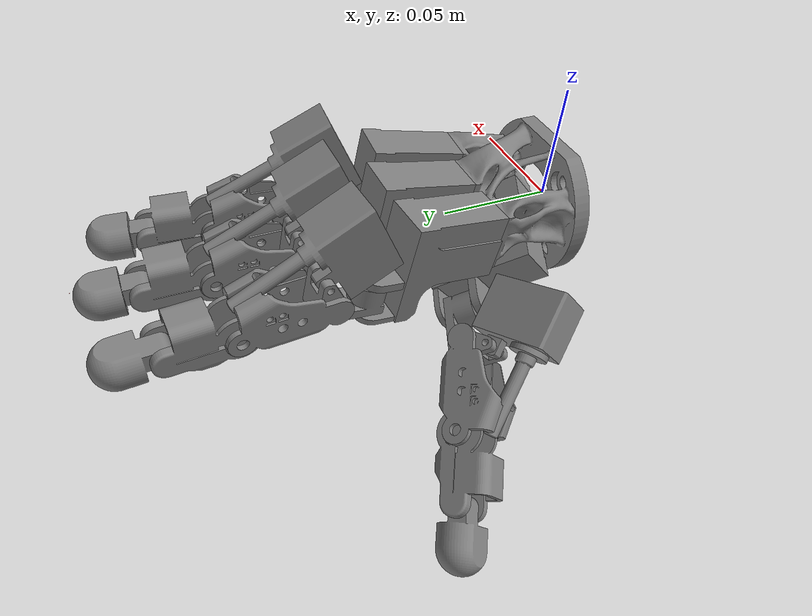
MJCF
<mujoco model="hand_urdf">
  <compiler angle="radian"/>

  <asset>
    <mesh name="base_link" content_type="model/stl" file="base_link.stl" scale="0.001 0.001 0.001"/>
    <mesh name="mcp2_1" content_type="model/stl" file="mcp2_1.stl" scale="0.001 0.001 0.001"/>
    <mesh name="pp2_1" content_type="model/stl" file="pp2_1.stl" scale="0.001 0.001 0.001"/>
    <mesh name="mp2_1" content_type="model/stl" file="mp2_1.stl" scale="0.001 0.001 0.001"/>
    <mesh name="dp2_1" content_type="model/stl" file="dp2_1.stl" scale="0.001 0.001 0.001"/>
    <mesh name="meta2_1" content_type="model/stl" file="meta2_1.stl" scale="0.001 0.001 0.001"/>
    <mesh name="meta1_1" content_type="model/stl" file="meta1_1.stl" scale="0.001 0.001 0.001"/>
    <mesh name="mcp1_1" content_type="model/stl" file="mcp1_1.stl" scale="0.001 0.001 0.001"/>
    <mesh name="pp1_1" content_type="model/stl" file="pp1_1.stl" scale="0.001 0.001 0.001"/>
    <mesh name="mp1_1" content_type="model/stl" file="mp1_1.stl" scale="0.001 0.001 0.001"/>
    <mesh name="dp1_1" content_type="model/stl" file="dp1_1.stl" scale="0.001 0.001 0.001"/>
    <mesh name="meta3_1" content_type="model/stl" file="meta3_1.stl" scale="0.001 0.001 0.001"/>
    <mesh name="mcp3_1" content_type="model/stl" file="mcp3_1.stl" scale="0.001 0.001 0.001"/>
    <mesh name="pp3_1" content_type="model/stl" file="pp3_1.stl" scale="0.001 0.001 0.001"/>
    <mesh name="mp3_1" content_type="model/stl" file="mp3_1.stl" scale="0.001 0.001 0.001"/>
    <mesh name="dp3_1" content_type="model/stl" file="dp3_1.stl" scale="0.001 0.001 0.001"/>
    <mesh name="meta4_1" content_type="model/stl" file="meta4_1.stl" scale="0.001 0.001 0.001"/>
    <mesh name="mcp4_1" content_type="model/stl" file="mcp4_1.stl" scale="0.001 0.001 0.001"/>
    <mesh name="pp4_1" content_type="model/stl" file="pp4_1.stl" scale="0.001 0.001 0.001"/>
    <mesh name="mp4_1" content_type="model/stl" file="mp4_1.stl" scale="0.001 0.001 0.001"/>
    <mesh name="dp4_1" content_type="model/stl" file="dp4_1.stl" scale="0.001 0.001 0.001"/>
    <mesh name="act1_1" content_type="model/stl" file="act1_1.stl" scale="0.001 0.001 0.001"/>
    <mesh name="act2_1" content_type="model/stl" file="act2_1.stl" scale="0.001 0.001 0.001"/>
    <mesh name="act3_1" content_type="model/stl" file="act3_1.stl" scale="0.001 0.001 0.001"/>
    <mesh name="act4_1" content_type="model/stl" file="act4_1.stl" scale="0.001 0.001 0.001"/>
  </asset>

  <worldbody>
    <geom type="mesh" mesh="base_link"/>
    <geom type="mesh" mesh="meta2_1"/>
    <geom type="mesh" mesh="meta1_1"/>
    <geom type="mesh" mesh="meta3_1"/>
    <geom type="mesh" mesh="meta4_1"/>
    <body name="mcp2_1" pos="-0.029022 0.100047 -0.013279">
      <inertial pos="-0.00085722 0.00842528 0.00865166" quat="0.707107 0.707107 0 0" mass="0.0150899" diaginertia="2e-06 2e-06 1e-06"/>
      <joint name="aa2" pos="0 0 0" axis="0 -0.173648 0.984808"/>
      <geom pos="0.029022 -0.100047 0.013279" quat="1 0 0 0" type="mesh" mesh="mcp2_1"/>
      <body name="pp2_1" pos="-0.008953 0.01468 0.010509">
        <inertial pos="0.00558963 0.0222004 0.00172825" quat="0.707107 0.707107 0 0" mass="0.0125687" diaginertia="3e-06 3e-06 2e-06"/>
        <joint name="mcp2" pos="0 0 0" axis="-0.996195 -0.085832 -0.015134"/>
        <geom pos="0.037975 -0.114727 0.00277" quat="1 0 0 0" type="mesh" mesh="pp2_1"/>
        <body name="mp2_1" pos="-0.003931 0.039809 -3.3e-05">
          <inertial pos="0.00676453 0.0144678 0.00126187" quat="0.707107 0.707107 0 0" mass="0.0129842" diaginertia="2e-06 2e-06 1e-06"/>
          <joint name="pip2" pos="0 0 0" axis="-0.996195 -0.085832 -0.015134"/>
          <geom pos="0.041906 -0.154536 0.002803" quat="1 0 0 0" type="mesh" mesh="mp2_1"/>
          <body name="dp2_1" pos="8.7e-05 0.028112 1.9e-05">
            <inertial pos="0.00429285 0.0142959 -0.000246767" mass="0.0151738" diaginertia="1e-06 1e-06 1e-06"/>
            <joint name="dip2" pos="0 0 0" axis="-0.996195 -0.085832 -0.015134"/>
            <geom pos="0.041819 -0.182648 0.002784" quat="1 0 0 0" type="mesh" mesh="dp2_1"/>
            <site name="tip2_site" size="0.0001" rgba="1 0 0 1" pos="0 0.028 0"/>
          </body>
        </body>
      </body>
      <body name="act2_1" pos="0.001613 0.018389 0.02081">
        <inertial pos="-0.00292034 -0.00937475 0.0141296" quat="0.707107 0.707107 0 0" mass="0.050027" diaginertia="1e-05 8e-06 6e-06"/>
        <joint name="act2" pos="0 0 0" axis="-0.996195 -0.085832 -0.015134"/>
        <geom pos="0.027409 -0.118436 -0.007531" quat="1 0 0 0" type="mesh" mesh="act2_1"/>
      </body>
    </body>
    <body name="mcp1_1" pos="-0.029913 0.05726 -0.033338">
      <inertial pos="-0.0118924 -0.00197871 0.00110107" quat="0.5 0.5 0.5 0.5" mass="0.0150899" diaginertia="2e-06 2e-06 1e-06"/>
      <joint name="aa1" pos="0 0 0" axis="-0.42367 -0.700574 0.574195"/>
      <geom pos="0.029913 -0.05726 0.033338" quat="1 0 0 0" type="mesh" mesh="mcp1_1"/>
      <body name="pp1_1" pos="-0.018968 0.004511 0.005092">
        <inertial pos="-0.0183518 0.00316656 -0.0134266" quat="0.5 0.5 0.5 0.5" mass="0.0125687" diaginertia="3e-06 3e-06 2e-06"/>
        <joint name="mcp1" pos="0 0 0" axis="0.037066 -0.646775 -0.76178"/>
        <geom pos="0.048881 -0.061771 0.028246" quat="1 0 0 0" type="mesh" mesh="pp1_1"/>
        <body name="mp1_1" pos="-0.032135 0.006716 -0.027613">
          <inertial pos="-0.012269 0.0102303 0.00121932" quat="0.5 0.5 0.5 0.5" mass="0.0129842" diaginertia="2e-06 2e-06 1e-06"/>
          <joint name="pip1" pos="0 0 0" axis="0.037066 -0.646775 -0.76178"/>
          <geom pos="0.081016 -0.068487 0.055859" quat="1 0 0 0" type="mesh" mesh="mp1_1"/>
          <body name="dp1_1" pos="-0.023397 0.020451 -0.00078">
            <inertial pos="-0.0109583 0.00245434 -0.00983685" mass="0.0151738" diaginertia="1e-06 1e-06 1e-06"/>
            <joint name="dip1" pos="0 0 0" axis="0.037066 -0.646775 -0.76178"/>
            <geom pos="0.104413 -0.088938 0.056639" quat="1 0 0 0" type="mesh" mesh="dp1_1"/>
            <site name="tip1_site" size="0.0001" rgba="1 0 0 1" pos="0 0.028 0"/>
          </body>
        </body>
      </body>
      <body name="act1_1" pos="-0.026658 -0.007903 0.000818">
        <inertial pos="-0.000833478 -0.010584 0.0135401" quat="0.433758 0.539223 -0.0208348 0.721567" mass="0.050027" diaginertia="1.05688e-05 7.63555e-06 4.7956e-06"/>
        <joint name="act1" pos="0 0 0" axis="0.037066 -0.646775 -0.76178"/>
        <geom pos="0.056571 -0.049357 0.03252" quat="1 0 0 0" type="mesh" mesh="act1_1"/>
      </body>
    </body>
    <body name="mcp3_1" pos="0.00045 0.101099 -0.013093">
      <inertial pos="3.79376e-07 0.00846239 0.0086577" quat="0.707107 0.707107 0 0" mass="0.0150899" diaginertia="2e-06 2e-06 1e-06"/>
      <joint name="aa3" pos="0 0 0" axis="0 -0.173648 0.984808"/>
      <geom pos="-0.00045 -0.101099 0.013093" quat="1 0 0 0" type="mesh" mesh="mcp3_1"/>
      <body name="pp3_1" pos="0.0075 0.015388 0.010633">
        <inertial pos="-0.00749962 0.0216372 0.00162929" quat="0.707107 0.707107 0 0" mass="0.0125687" diaginertia="3e-06 3e-06 2e-06"/>
        <joint name="mcp3" pos="0 0 0" axis="-1 0 0"/>
        <geom pos="-0.00795 -0.116487 0.00246" quat="1 0 0 0" type="mesh" mesh="pp3_1"/>
        <body name="mp3_1" pos="-0.0155 0.04 0">
          <inertial pos="0.00800038 0.0138322 0.00115081" quat="0.707107 0.707107 0 0" mass="0.0129842" diaginertia="2e-06 2e-06 1e-06"/>
          <joint name="pip3" pos="0 0 0" axis="-1 0 0"/>
          <geom pos="0.00755 -0.156487 0.00246" quat="1 0 0 0" type="mesh" mesh="mp3_1"/>
          <body name="dp3_1" pos="0.0135 0.028 0">
            <inertial pos="-0.00549962 0.0138749 -0.000320751" mass="0.0151738" diaginertia="1e-06 1e-06 1e-06"/>
            <joint name="dip3" pos="0 0 0" axis="-1 0 0"/>
            <geom pos="-0.00595 -0.184487 0.00246" quat="1 0 0 0" type="mesh" mesh="dp3_1"/>
            <site name="tip3_site" size="0.0001" rgba="1 0 0 1" pos="0 0.028 0"/>
          </body>
        </body>
      </body>
      <body name="act3_1" pos="0.0035 0.01817 0.020771">
        <inertial pos="-0.00349962 -0.00909928 0.0141781" quat="0.707107 0.707107 0 0" mass="0.050027" diaginertia="1e-05 8e-06 6e-06"/>
        <joint name="act3" pos="0 0 0" axis="-1 0 0"/>
        <geom pos="-0.00395 -0.119269 -0.007678" quat="1 0 0 0" type="mesh" mesh="act3_1"/>
      </body>
    </body>
    <body name="mcp4_1" pos="0.029803 0.092965 -0.014527">
      <inertial pos="0.000857375 0.00842528 0.00865091" quat="0.707107 0.707107 0 0" mass="0.0150899" diaginertia="2e-06 2e-06 1e-06"/>
      <joint name="aa4" pos="0 0 0" axis="0 -0.173648 0.984808"/>
      <geom pos="-0.029803 -0.092965 0.014527" quat="1 0 0 0" type="mesh" mesh="mcp4_1"/>
      <body name="pp4_1" pos="0.008953 0.01468 0.010508">
        <inertial pos="-0.00558948 0.0222003 0.00172851" quat="0.707107 0.707107 0 0" mass="0.0125687" diaginertia="3e-06 3e-06 2e-06"/>
        <joint name="mcp4" pos="0 0 0" axis="-0.996195 0.085832 0.015134"/>
        <geom pos="-0.038756 -0.107645 0.004019" quat="1 0 0 0" type="mesh" mesh="pp4_1"/>
        <body name="mp4_1" pos="-0.012008 0.041183 0.000209">
          <inertial pos="0.00917463 0.0130938 0.00102012" quat="0.707107 0.707107 0 0" mass="0.0129842" diaginertia="2e-06 2e-06 1e-06"/>
          <joint name="pip4" pos="0 0 0" axis="-1 0 0"/>
          <geom pos="-0.026748 -0.148828 0.00381" quat="1 0 0 0" type="mesh" mesh="mp4_1"/>
          <body name="dp4_1" pos="0.015852 0.026738 -0.000223">
            <inertial pos="-0.00429269 0.0142959 -0.000246515" mass="0.0151738" diaginertia="1e-06 1e-06 1e-06"/>
            <joint name="dip4" pos="0 0 0" axis="-0.996195 0.085832 0.015134"/>
            <geom pos="-0.0426 -0.175566 0.004033" quat="1 0 0 0" type="mesh" mesh="dp4_1"/>
            <site name="tip4_site" size="0.0001" rgba="1 0 0 1" pos="0 0.028 0"/>
          </body>
        </body>
      </body>
      <body name="act4_1" pos="0.005361 0.017788 0.020703">
        <inertial pos="-0.00405351 -0.00877375 0.0142359" quat="0.707107 0.707107 0 0" mass="0.050027" diaginertia="1e-05 8e-06 6e-06"/>
        <joint name="act4" pos="0 0 0" axis="-0.996195 0.085832 0.015134"/>
        <geom pos="-0.035164 -0.110753 -0.006176" quat="1 0 0 0" type="mesh" mesh="act4_1"/>
      </body>
    </body>
  </worldbody>
</mujoco>
